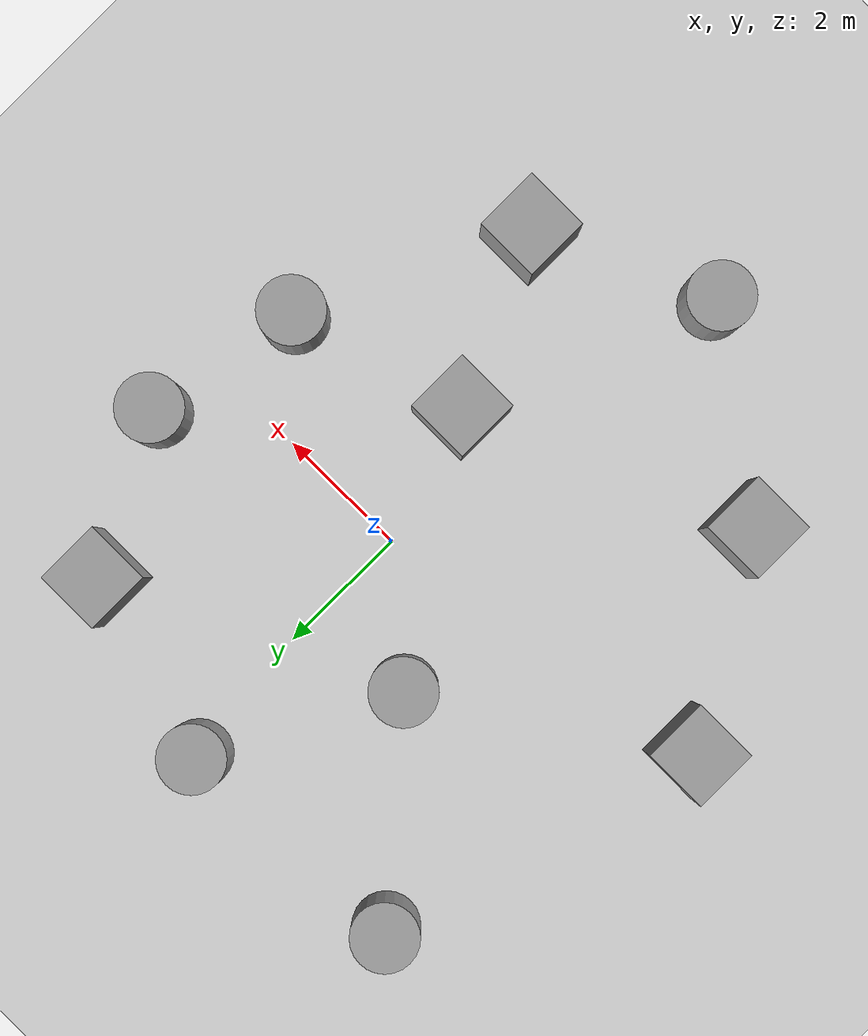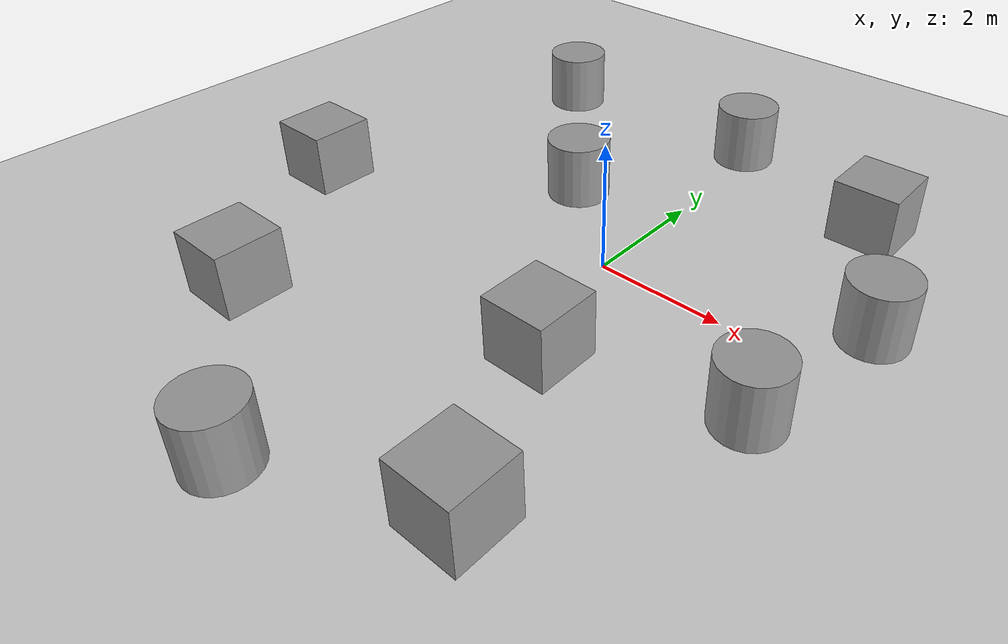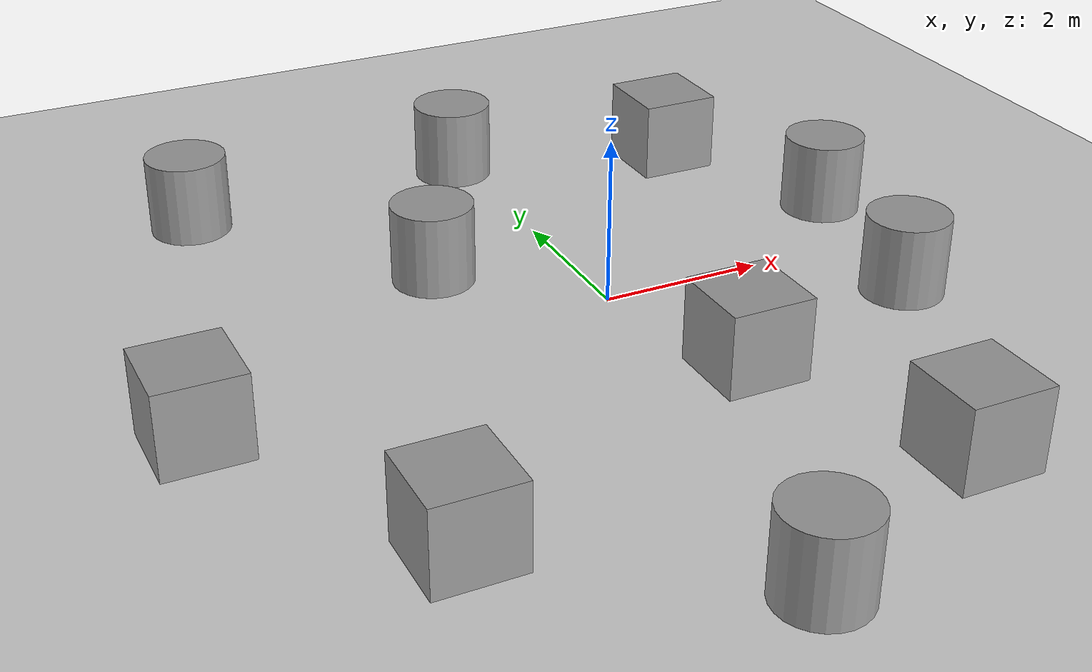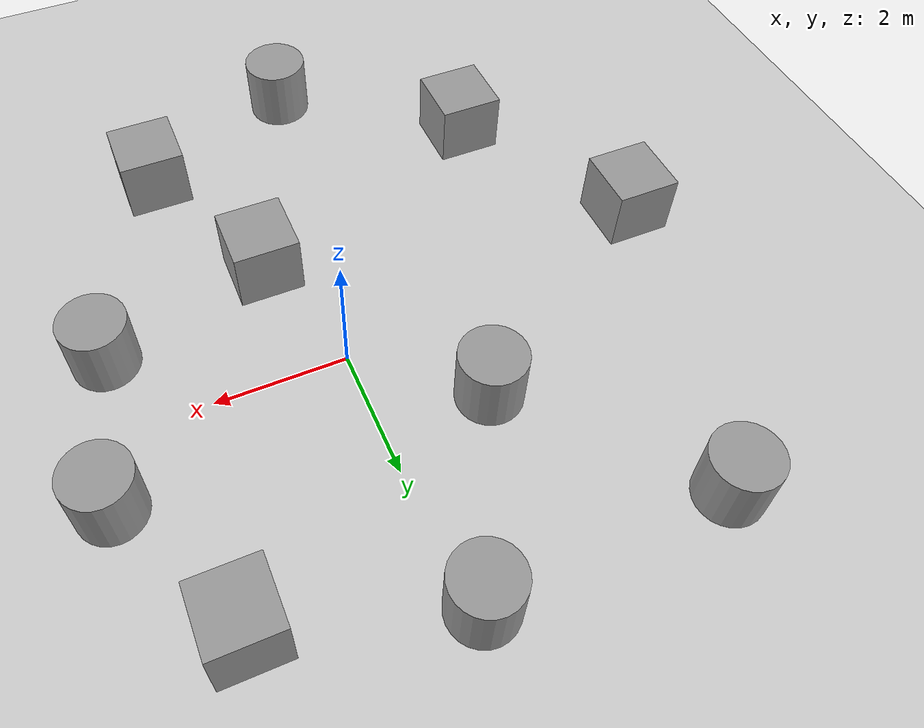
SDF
<sdf version="1.7">
 <world name="default">
  <light name="sun" type="directional">
   <pose>0 0 10 0 -0 0</pose>
   <diffuse>0.8 0.8 0.8 1</diffuse>
   <specular>0.2 0.2 0.2 1</specular>
   <attenuation>
    <range>1000</range>
    <constant>0.9</constant>
    <linear>0.01</linear>
    <quadratic>0.001</quadratic>
   </attenuation>
   <direction>-0.5 0.1 -0.9</direction>
   <spot><inner_angle>0</inner_angle><outer_angle>0</outer_angle><falloff>0</falloff></spot>
  </light>
  <model name="ground_plane">
   <static>1</static>
   <link name="link">
    <collision name="collision">
     <geometry><plane><normal>0 0 1</normal><size>100 100</size></plane></geometry>
     <surface>
      <contact><collide_bitmask>65535</collide_bitmask></contact>
      <friction><ode><mu>100</mu><mu2>50</mu2></ode></friction>
     </surface>
    </collision>
    <visual name="visual">
     <cast_shadows>0</cast_shadows>
     <geometry><plane><normal>0 0 1</normal><size>100 100</size></plane></geometry>
     <material>
      <script><uri>file://media/materials/scripts/gazebo.material</uri><name>Gazebo/Grey</name></script>
     </material>
    </visual>
   </link>
  </model>
  <gravity>0 0 -9.8</gravity>
  <magnetic_field>6e-06 2.3e-05 -4.2e-05</magnetic_field>
  <atmosphere type="adiabatic"/>
  <physics type="ode">
   <max_step_size>0.001</max_step_size>
   <real_time_factor>1</real_time_factor>
   <real_time_update_rate>1000</real_time_update_rate>
  </physics>
  <scene><ambient>0.4 0.4 0.4 1</ambient><background>0.7 0.7 0.7 1</background><shadows>1</shadows></scene>
  <audio><device>default</device></audio>
  <spherical_coordinates>
   <surface_model>EARTH_WGS84</surface_model>
   <latitude_deg>0</latitude_deg>
   <longitude_deg>0</longitude_deg>
   <elevation>0</elevation>
   <heading_deg>0</heading_deg>
  </spherical_coordinates>
  <model name="unit_cylinder">
   <pose>-1.62592 1.36663 0.499998 3e-06 -3e-06 0</pose>
   <link name="link">
    <inertial>
     <mass>1</mass>
     <inertia><ixx>0.145833</ixx><ixy>0</ixy><ixz>0</ixz><iyy>0.145833</iyy><iyz>0</iyz><izz>0.125</izz></inertia>
    </inertial>
    <collision name="collision">
     <geometry><cylinder><radius>0.5</radius><length>1</length></cylinder></geometry>
    </collision>
    <visual name="visual">
     <geometry><cylinder><radius>0.5</radius><length>1</length></cylinder></geometry>
     <material>
      <script><name>Gazebo/Grey</name><uri>file://media/materials/scripts/gazebo.material</uri></script>
     </material>
    </visual>
   </link>
  </model>
  <model name="unit_box">
   <pose>0.61518 -2.02915 0.5 0 -0 0</pose>
   <link name="link">
    <inertial>
     <mass>1</mass>
     <inertia>
      <ixx>0.166667</ixx>
      <ixy>0</ixy>
      <ixz>0</ixz>
      <iyy>0.166667</iyy>
      <iyz>0</iyz>
      <izz>0.166667</izz>
     </inertia>
    </inertial>
    <collision name="collision"><geometry><box><size>1 1 1</size></box></geometry></collision>
    <visual name="visual">
     <geometry><box><size>1 1 1</size></box></geometry>
     <material>
      <script><name>Gazebo/Grey</name><uri>file://media/materials/scripts/gazebo.material</uri></script>
     </material>
    </visual>
   </link>
  </model>
  <model name="unit_cylinder_0">
   <pose>3.6683 1.06916 0.499992 -3e-06 3e-06 0</pose>
   <link name="link">
    <inertial>
     <mass>1</mass>
     <inertia><ixx>0.145833</ixx><ixy>0</ixy><ixz>0</ixz><iyy>0.145833</iyy><iyz>0</iyz><izz>0.125</izz></inertia>
    </inertial>
    <collision name="collision">
     <geometry><cylinder><radius>0.5</radius><length>1</length></cylinder></geometry>
    </collision>
    <visual name="visual">
     <geometry><cylinder><radius>0.5</radius><length>1</length></cylinder></geometry>
     <material>
      <script><name>Gazebo/Grey</name><uri>file://media/materials/scripts/gazebo.material</uri></script>
     </material>
    </visual>
   </link>
  </model>
  <model name="unit_cylinder_1">
   <pose>-0.199749 4.11138 0.499998 3e-06 -3e-06 0</pose>
   <link name="link">
    <inertial>
     <mass>1</mass>
     <inertia><ixx>0.145833</ixx><ixy>0</ixy><ixz>0</ixz><iyy>0.145833</iyy><iyz>0</iyz><izz>0.125</izz></inertia>
    </inertial>
    <collision name="collision">
     <geometry><cylinder><radius>0.5</radius><length>1</length></cylinder></geometry>
    </collision>
    <visual name="visual">
     <geometry><cylinder><radius>0.5</radius><length>1</length></cylinder></geometry>
     <material>
      <script><name>Gazebo/Grey</name><uri>file://media/materials/scripts/gazebo.material</uri></script>
     </material>
    </visual>
   </link>
  </model>
  <model name="unit_cylinder_2">
   <pose>3.23192 -1.28245 0.499992 -3e-06 3e-06 0</pose>
   <link name="link">
    <inertial>
     <mass>1</mass>
     <inertia><ixx>0.145833</ixx><ixy>0</ixy><ixz>0</ixz><iyy>0.145833</iyy><iyz>0</iyz><izz>0.125</izz></inertia>
    </inertial>
    <collision name="collision">
     <geometry><cylinder><radius>0.5</radius><length>1</length></cylinder></geometry>
    </collision>
    <visual name="visual">
     <geometry><cylinder><radius>0.5</radius><length>1</length></cylinder></geometry>
     <material>
      <script><name>Gazebo/Grey</name><uri>file://media/materials/scripts/gazebo.material</uri></script>
     </material>
    </visual>
   </link>
  </model>
  <model name="unit_box_0">
   <pose>2.5629 3.29627 0.5 0 -0 0</pose>
   <link name="link">
    <inertial>
     <mass>1</mass>
     <inertia>
      <ixx>0.166667</ixx>
      <ixy>0</ixy>
      <ixz>0</ixz>
      <iyy>0.166667</iyy>
      <iyz>0</iyz>
      <izz>0.166667</izz>
     </inertia>
    </inertial>
    <collision name="collision"><geometry><box><size>1 1 1</size></box></geometry></collision>
    <visual name="visual">
     <geometry><box><size>1 1 1</size></box></geometry>
     <material>
      <script><name>Gazebo/Grey</name><uri>file://media/materials/scripts/gazebo.material</uri></script>
     </material>
    </visual>
   </link>
  </model>
  <model name="unit_box_1">
   <pose>-3.4958 -3.74198 0.5 -0 -0 -0</pose>
   <link name="link">
    <inertial>
     <mass>1</mass>
     <inertia>
      <ixx>0.166667</ixx>
      <ixy>0</ixy>
      <ixz>0</ixz>
      <iyy>0.166667</iyy>
      <iyz>0</iyz>
      <izz>0.166667</izz>
     </inertia>
    </inertial>
    <collision name="collision"><geometry><box><size>1 1 1</size></box></geometry></collision>
    <visual name="visual">
     <geometry><box><size>1 1 1</size></box></geometry>
     <material>
      <script><name>Gazebo/Grey</name><uri>file://media/materials/scripts/gazebo.material</uri></script>
     </material>
    </visual>
   </link>
  </model>
  <model name="unit_box_2">
   <pose>-5.17263 -0.931615 0.5 0 -0 0</pose>
   <link name="link">
    <inertial>
     <mass>1</mass>
     <inertia>
      <ixx>0.166667</ixx>
      <ixy>0</ixy>
      <ixz>0</ixz>
      <iyy>0.166667</iyy>
      <iyz>0</iyz>
      <izz>0.166667</izz>
     </inertia>
    </inertial>
    <collision name="collision"><geometry><box><size>1 1 1</size></box></geometry></collision>
    <visual name="visual">
     <geometry><box><size>1 1 1</size></box></geometry>
     <material>
      <script><name>Gazebo/Grey</name><uri>file://media/materials/scripts/gazebo.material</uri></script>
     </material>
    </visual>
   </link>
  </model>
  <model name="unit_box_3">
   <pose>1.71243 -4.4951 0.5 -0 -0 -0</pose>
   <link name="link">
    <inertial>
     <mass>1</mass>
     <inertia>
      <ixx>0.166667</ixx>
      <ixy>0</ixy>
      <ixz>0</ixz>
      <iyy>0.166667</iyy>
      <iyz>0</iyz>
      <izz>0.166667</izz>
     </inertia>
    </inertial>
    <collision name="collision"><geometry><box><size>1 1 1</size></box></geometry></collision>
    <visual name="visual">
     <geometry><box><size>1 1 1</size></box></geometry>
     <material>
      <script><name>Gazebo/Grey</name><uri>file://media/materials/scripts/gazebo.material</uri></script>
     </material>
    </visual>
   </link>
  </model>
  <model name="unit_cylinder_3">
   <pose>-3.85715 3.96291 0.499993 -3e-06 -4e-06 -0</pose>
   <link name="link">
    <inertial>
     <mass>1</mass>
     <inertia><ixx>0.145833</ixx><ixy>0</ixy><ixz>0</ixz><iyy>0.145833</iyy><iyz>0</iyz><izz>0.125</izz></inertia>
    </inertial>
    <collision name="collision">
     <geometry><cylinder><radius>0.5</radius><length>1</length></cylinder></geometry>
    </collision>
    <visual name="visual">
     <geometry><cylinder><radius>0.5</radius><length>1</length></cylinder></geometry>
     <material>
      <script><name>Gazebo/Grey</name><uri>file://media/materials/scripts/gazebo.material</uri></script>
     </material>
    </visual>
   </link>
  </model>
  <model name="unit_cylinder_4">
   <pose>-0.856912 -5.65784 0.499997 3e-06 4e-06 -0</pose>
   <link name="link">
    <inertial>
     <mass>1</mass>
     <inertia><ixx>0.145833</ixx><ixy>0</ixy><ixz>0</ixz><iyy>0.145833</iyy><iyz>0</iyz><izz>0.125</izz></inertia>
    </inertial>
    <collision name="collision">
     <geometry><cylinder><radius>0.5</radius><length>1</length></cylinder></geometry>
    </collision>
    <visual name="visual">
     <geometry><cylinder><radius>0.5</radius><length>1</length></cylinder></geometry>
     <material>
      <script><name>Gazebo/Grey</name><uri>file://media/materials/scripts/gazebo.material</uri></script>
     </material>
    </visual>
   </link>
  </model>
 </world>
</sdf>
